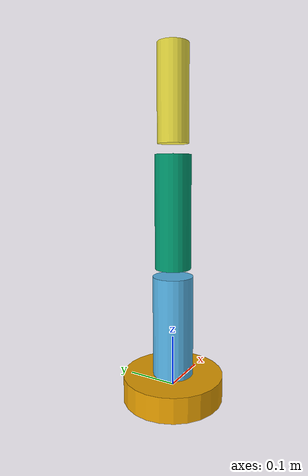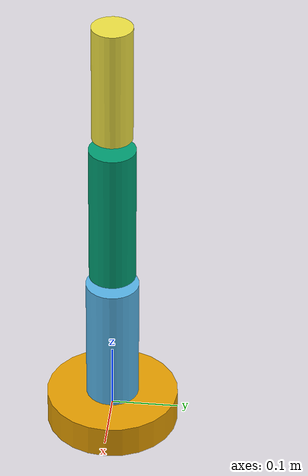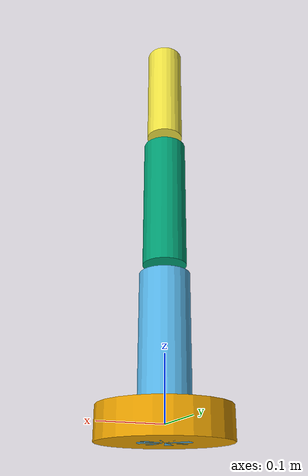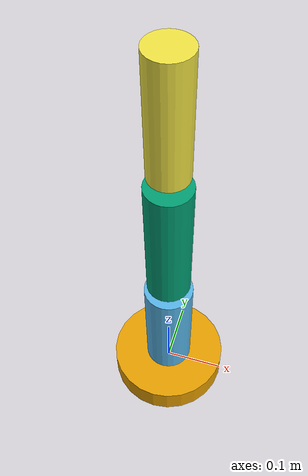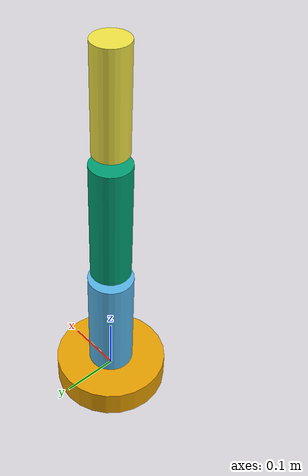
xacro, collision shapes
<?xml version="1.0"?>
<robot xmlns:xacro="http://www.ros.org/wiki/xacro"
       name="rurgery_robot">

<xacro:property name="mesh_scale" value="0.001 0.001 0.001"/>

<!-- MACRO FOR LINKS -->
<xacro:macro name="link_mesh" params="name mesh mass radius length">

<link name="${name}">

  <visual>
    <geometry>
      <mesh filename="package://robot_description/meshes/${mesh}"
            scale="${mesh_scale}"/>
    </geometry>
  </visual>

  <collision>
    <geometry>
      <cylinder radius="${radius}" length="${length}"/>
    </geometry>
  </collision>

  <inertial>
    <mass value="${mass}"/>
    <inertia ixx="0.005" iyy="0.005" izz="0.005"
             ixy="0" ixz="0" iyz="0"/>
  </inertial>

</link>

</xacro:macro>

<xacro:link_mesh name="base_link" mesh="base_link.STL" mass="6" radius="0.1" length="0.05"/>
<xacro:link_mesh name="link1" mesh="link1.STL" mass="1.5" radius="0.04" length="0.25"/>
<xacro:link_mesh name="link2" mesh="link2.STL" mass="1.2" radius="0.035" length="0.22"/>
<xacro:link_mesh name="link3" mesh="link3.STL" mass="0.8" radius="0.03" length="0.18"/>

<!-- JOINTS -->

<joint name="joint1" type="revolute">
  <parent link="base_link"/>
  <child link="link1"/>
  <origin xyz="0 0 0.1"/>
  <axis xyz="0 0 1"/>
  <limit lower="-3.14" upper="3.14"
         effort="30" velocity="2"/>
</joint>

<joint name="joint2" type="revolute">
  <parent link="link1"/>
  <child link="link2"/>
  <origin xyz="0 0 0.25"/>
  <axis xyz="0 1 0"/>
  <limit lower="-1.57" upper="1.57"
         effort="30" velocity="2"/>
</joint>

<joint name="joint3" type="revolute">
  <parent link="link2"/>
  <child link="link3"/>
  <origin xyz="0 0 0.22"/>
  <axis xyz="0 1 0"/>
  <limit lower="-1.57" upper="1.57"
         effort="30" velocity="2"/>
</joint>

</robot>
